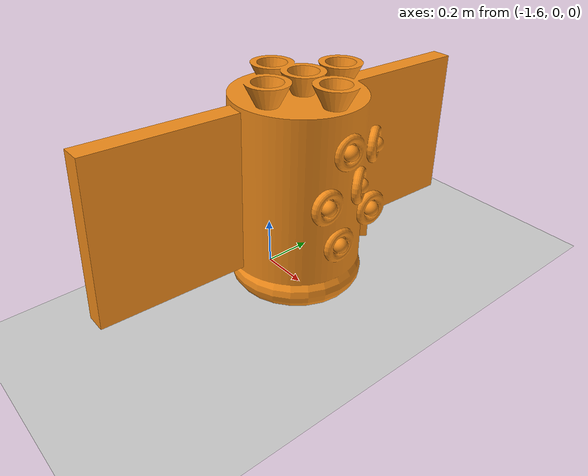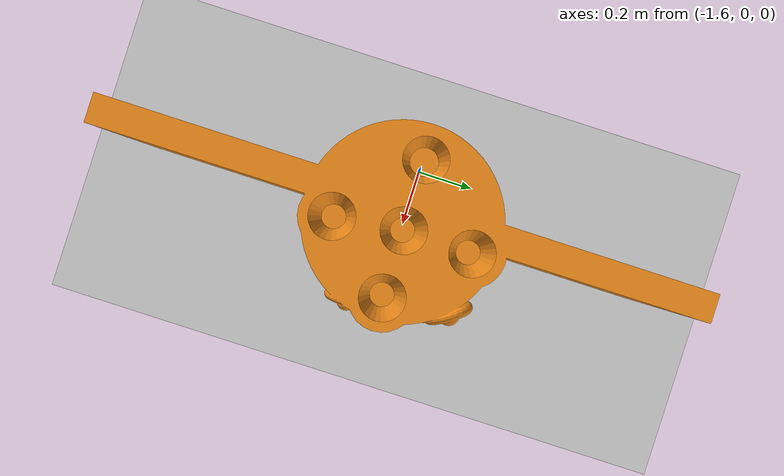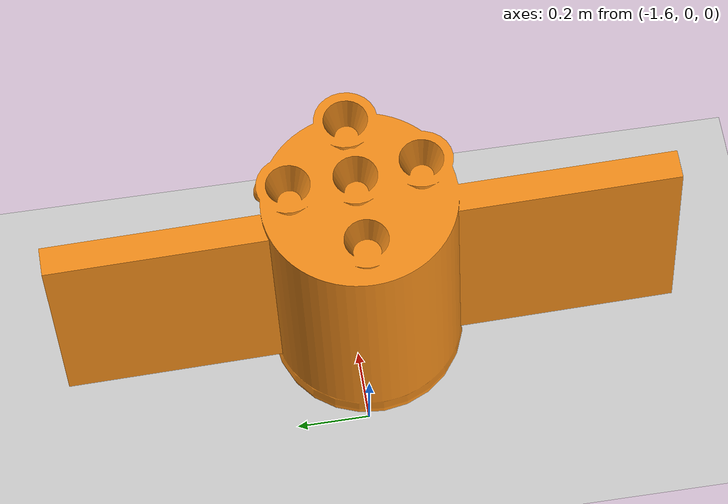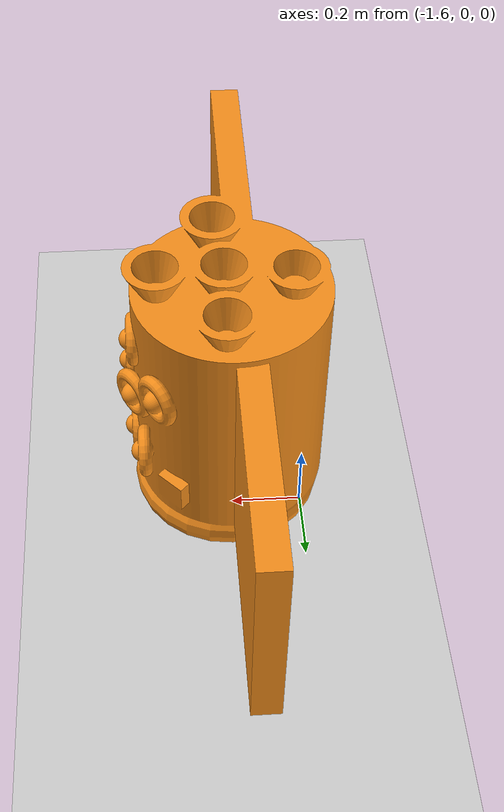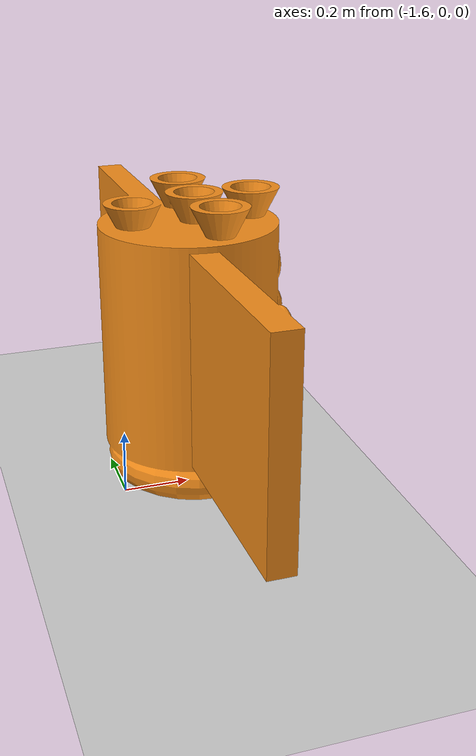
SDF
<sdf version="1.7">
 <world name="default">
  <light name="sun" type="directional">
   <pose>0 0 10 0 -0 0</pose>
   <diffuse>0.8 0.8 0.8 1</diffuse>
   <specular>0.2 0.2 0.2 1</specular>
   <attenuation>
    <range>1000</range>
    <constant>0.9</constant>
    <linear>0.01</linear>
    <quadratic>0.001</quadratic>
   </attenuation>
   <direction>-0.5 0.1 -0.9</direction>
   <spot><inner_angle>0</inner_angle><outer_angle>0</outer_angle><falloff>0</falloff></spot>
  </light>
  <model name="ground_plane">
   <static>1</static>
   <link name="link">
    <collision name="collision">
     <geometry><plane><normal>0 0 1</normal><size>100 100</size></plane></geometry>
     <surface>
      <contact><collide_bitmask>65535</collide_bitmask></contact>
      <friction><ode><mu>100</mu><mu2>50</mu2></ode></friction>
     </surface>
    </collision>
    <visual name="visual">
     <cast_shadows>0</cast_shadows>
     <geometry><plane><normal>0 0 1</normal><size>100 100</size></plane></geometry>
     <material>
      <script><uri>file://media/materials/scripts/gazebo.material</uri><name>Gazebo/Grey</name></script>
     </material>
    </visual>
   </link>
  </model>
  <gravity>0 0 -9.8</gravity>
  <magnetic_field>6e-06 2.3e-05 -4.2e-05</magnetic_field>
  <atmosphere type="adiabatic"/>
  <physics type="ode">
   <max_step_size>0.001</max_step_size>
   <real_time_factor>1</real_time_factor>
   <real_time_update_rate>1000</real_time_update_rate>
  </physics>
  <scene><ambient>0.4 0.4 0.4 1</ambient><background>0.7 0.7 0.7 1</background><shadows>1</shadows></scene>
  <spherical_coordinates>
   <surface_model>EARTH_WGS84</surface_model>
   <latitude_deg>0</latitude_deg>
   <longitude_deg>0</longitude_deg>
   <elevation>0</elevation>
   <heading_deg>0</heading_deg>
  </spherical_coordinates>
  <model name="robot">
   <link name="base_link">
    <inertial>
     <mass>1</mass>
     <inertia><ixx>1</ixx><ixy>0</ixy><ixz>0</ixz><iyy>1</iyy><iyz>0</iyz><izz>1</izz></inertia>
    </inertial>
    <collision name="base_link_collision">
     <geometry><box><size>1e-05 1e-05 1e-05</size></box></geometry>
    </collision>
    <visual name="base_link_fixed_joint_lump__satellite_visual">
     <geometry><mesh><scale>1 1 1</scale><uri>../meshes/satellite0.01.stl</uri></mesh></geometry>
     <material>
      <script><name>Gazebo/Orange</name><uri>file://media/materials/scripts/gazebo.material</uri></script>
     </material>
    </visual>
   </link>
   <pose>-1.37491 0.042825 5e-06 -1e-06 1e-06 -0</pose>
  </model>
 </world>
</sdf>
